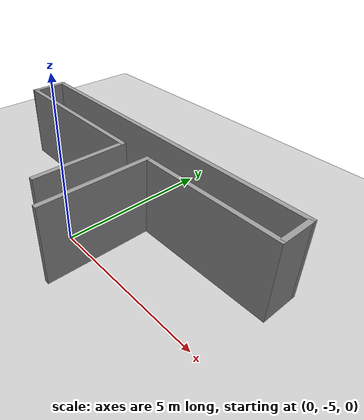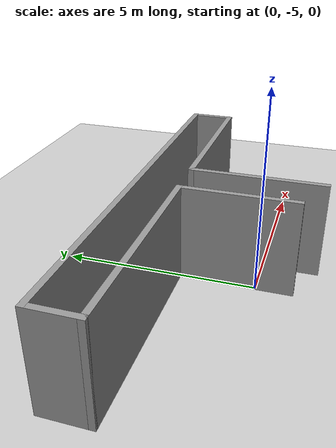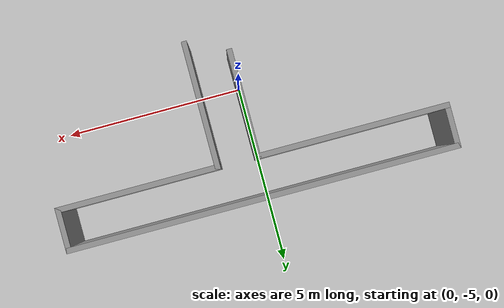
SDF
<sdf version="1.6">
 <world name="default">
  <light name="sun" type="directional">
   <pose>0 0 10 0 -0 0</pose>
   <diffuse>0.8 0.8 0.8 1</diffuse>
   <specular>0.2 0.2 0.2 1</specular>
   <attenuation>
    <range>1000</range>
    <constant>0.9</constant>
    <linear>0.01</linear>
    <quadratic>0.001</quadratic>
   </attenuation>
   <direction>-0.5 0.1 -0.9</direction>
  </light>
  <model name="ground_plane">
   <static>1</static>
   <link name="link">
    <collision name="collision">
     <geometry><plane><normal>0 0 1</normal><size>100 100</size></plane></geometry>
     <surface>
      <contact><collide_bitmask>65535</collide_bitmask></contact>
      <friction><ode><mu>100</mu><mu2>50</mu2></ode></friction>
     </surface>
    </collision>
    <visual name="visual">
     <cast_shadows>0</cast_shadows>
     <geometry><plane><normal>0 0 1</normal><size>100 100</size></plane></geometry>
     <material>
      <script><uri>file://media/materials/scripts/gazebo.material</uri><name>Gazebo/Grey</name></script>
     </material>
    </visual>
   </link>
  </model>
  <gravity>0 0 -9.8</gravity>
  <magnetic_field>6e-06 2.3e-05 -4.2e-05</magnetic_field>
  <atmosphere type="adiabatic"/>
  <physics name="default_physics" default="0" type="ode">
   <max_step_size>0.001</max_step_size>
   <real_time_factor>1</real_time_factor>
   <real_time_update_rate>1000</real_time_update_rate>
  </physics>
  <scene><ambient>0.4 0.4 0.4 1</ambient><background>0.7 0.7 0.7 1</background><shadows>1</shadows></scene>
  <audio><device>default</device></audio>
  <spherical_coordinates>
   <surface_model>EARTH_WGS84</surface_model>
   <latitude_deg>0</latitude_deg>
   <longitude_deg>0</longitude_deg>
   <elevation>0</elevation>
   <heading_deg>0</heading_deg>
  </spherical_coordinates>
  <model name="T_1m">
   <pose>0.16 -4.135 0 0 -0 0</pose>
   <link name="Wall_11">
    <collision name="Wall_11_Collision">
     <geometry><box><size>3.5 0.15 2.5</size></box></geometry>
     <pose>0 0 1.25 0 -0 0</pose>
    </collision>
    <visual name="Wall_11_Visual">
     <pose>0 0 1.25 0 -0 0</pose>
     <geometry><box><size>3.5 0.15 2.5</size></box></geometry>
     <material>
      <script><uri>file://media/materials/scripts/gazebo.material</uri><name>Gazebo/Grey</name></script>
      <ambient>1 1 1 1</ambient>
     </material>
     <meta><layer>0</layer></meta>
    </visual>
    <pose>0.95 -0.55 0 0 -0 -1.5708</pose>
   </link>
   <link name="Wall_15">
    <collision name="Wall_15_Collision">
     <geometry><box><size>1.25 0.15 2.5</size></box></geometry>
     <pose>0 0 1.25 0 -0 0</pose>
    </collision>
    <visual name="Wall_15_Visual">
     <pose>0 0 1.25 0 -0 0</pose>
     <geometry><box><size>1.25 0.15 2.5</size></box></geometry>
     <material>
      <script><uri>file://media/materials/scripts/gazebo.material</uri><name>Gazebo/Grey</name></script>
      <ambient>1 1 1 1</ambient>
     </material>
     <meta><layer>0</layer></meta>
    </visual>
    <pose>-5.3 1.675 0 0 -0 1.5708</pose>
   </link>
   <link name="Wall_17">
    <collision name="Wall_17_Collision">
     <geometry><box><size>1.25 0.15 2.5</size></box></geometry>
     <pose>0 0 1.25 0 -0 0</pose>
    </collision>
    <visual name="Wall_17_Visual">
     <pose>0 0 1.25 0 -0 0</pose>
     <geometry><box><size>1.25 0.15 2.5</size></box></geometry>
     <material>
      <script><uri>file://media/materials/scripts/gazebo.material</uri><name>Gazebo/Grey</name></script>
      <ambient>1 1 1 1</ambient>
     </material>
     <meta><layer>0</layer></meta>
    </visual>
    <pose>5.3 1.675 0 0 -0 1.5708</pose>
   </link>
   <link name="Wall_18">
    <collision name="Wall_18_Collision">
     <geometry><box><size>10.75 0.15 2.5</size></box></geometry>
     <pose>0 0 1.25 0 -0 0</pose>
    </collision>
    <visual name="Wall_18_Visual">
     <pose>0 0 1.25 0 -0 0</pose>
     <geometry><box><size>10.75 0.15 2.5</size></box></geometry>
     <material>
      <script><uri>file://media/materials/scripts/gazebo.material</uri><name>Gazebo/Grey</name></script>
      <ambient>1 1 1 1</ambient>
     </material>
     <meta><layer>0</layer></meta>
    </visual>
    <pose>-0 2.225 0 0 -0 3.14159</pose>
   </link>
   <link name="Wall_2">
    <collision name="Wall_2_Collision">
     <geometry><box><size>4.5 0.15 2.5</size></box></geometry>
     <pose>0 0 1.25 0 -0 0</pose>
    </collision>
    <visual name="Wall_2_Visual">
     <pose>0 0 1.25 0 -0 0</pose>
     <geometry><box><size>4.5 0.15 2.5</size></box></geometry>
     <material>
      <script><uri>file://media/materials/scripts/gazebo.material</uri><name>Gazebo/Grey</name></script>
      <ambient>1 1 1 1</ambient>
     </material>
     <meta><layer>0</layer></meta>
    </visual>
    <pose>3.125 1.125 0 0 -0 3.14159</pose>
   </link>
   <link name="Wall_6">
    <collision name="Wall_6_Collision">
     <geometry><box><size>5.3 0.15 2.5</size></box></geometry>
     <pose>0 0 1.25 0 -0 0</pose>
    </collision>
    <visual name="Wall_6_Visual">
     <pose>0 0 1.25 0 -0 0</pose>
     <geometry><box><size>5.3 0.15 2.5</size></box></geometry>
     <material>
      <script><uri>file://media/materials/scripts/gazebo.material</uri><name>Gazebo/Grey</name></script>
      <ambient>1 1 1 1</ambient>
     </material>
     <meta><layer>0</layer></meta>
    </visual>
    <pose>-2.725 1.125 0 0 -0 0</pose>
   </link>
   <link name="Wall_9">
    <collision name="Wall_9_Collision">
     <geometry><box><size>3 0.15 2.5</size></box></geometry>
     <pose>0 0 1.25 0 -0 0</pose>
    </collision>
    <visual name="Wall_9_Visual">
     <pose>0 0 1.25 0 -0 0</pose>
     <geometry><box><size>3 0.15 2.5</size></box></geometry>
     <material>
      <script><uri>file://media/materials/scripts/gazebo.material</uri><name>Gazebo/Grey</name></script>
      <ambient>1 1 1 1</ambient>
     </material>
     <meta><layer>0</layer></meta>
    </visual>
    <pose>-0.15 -0.3 0 0 -0 -1.5708</pose>
   </link>
   <static>1</static>
  </model>
 </world>
</sdf>
